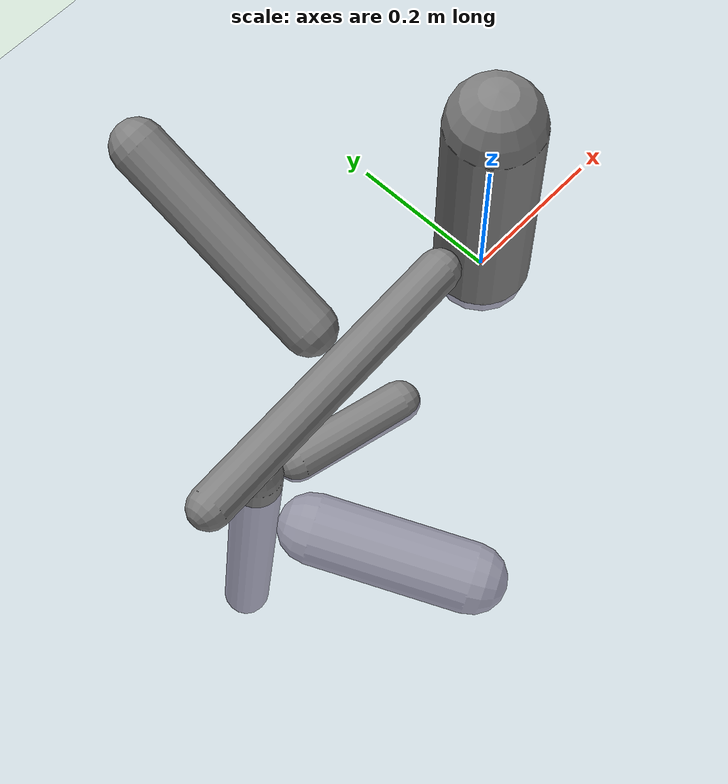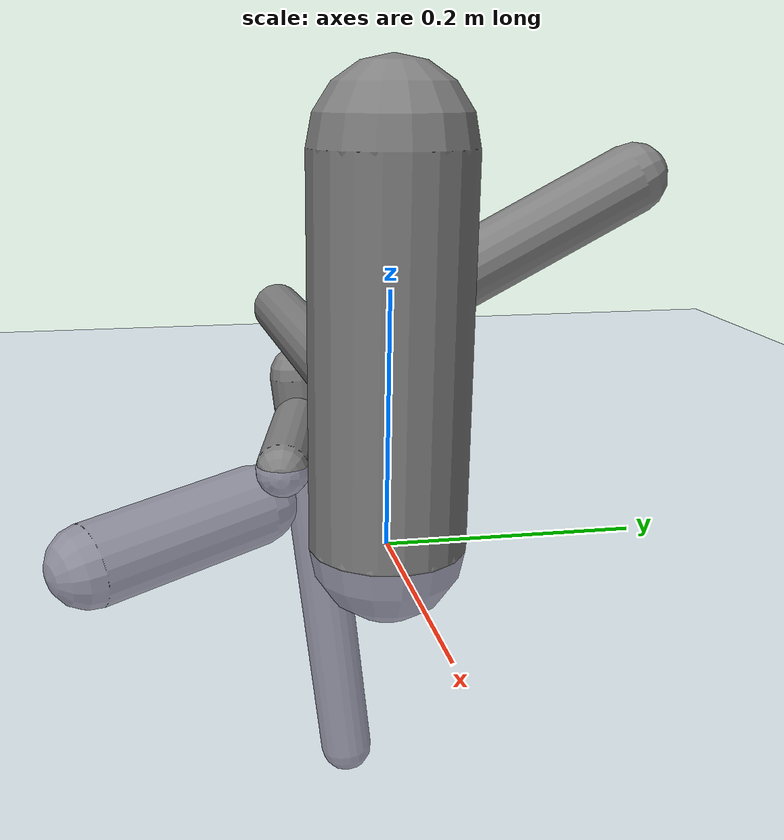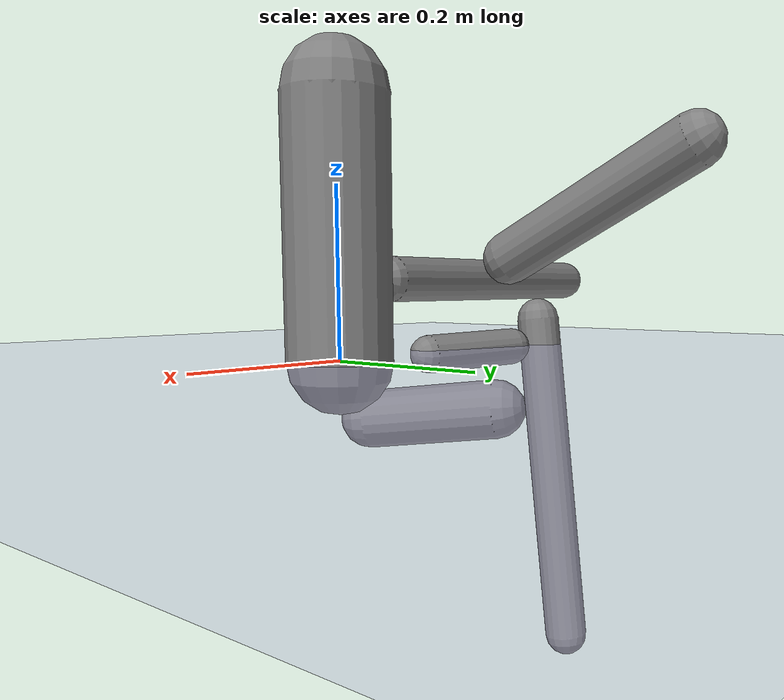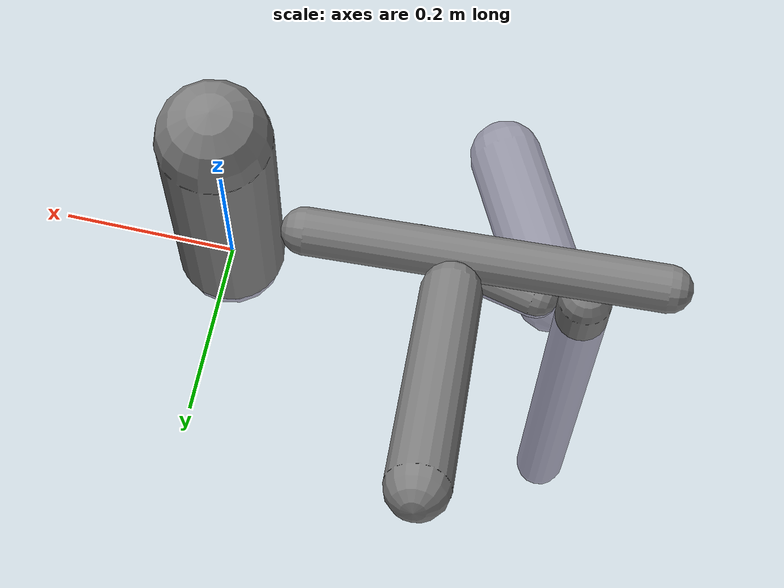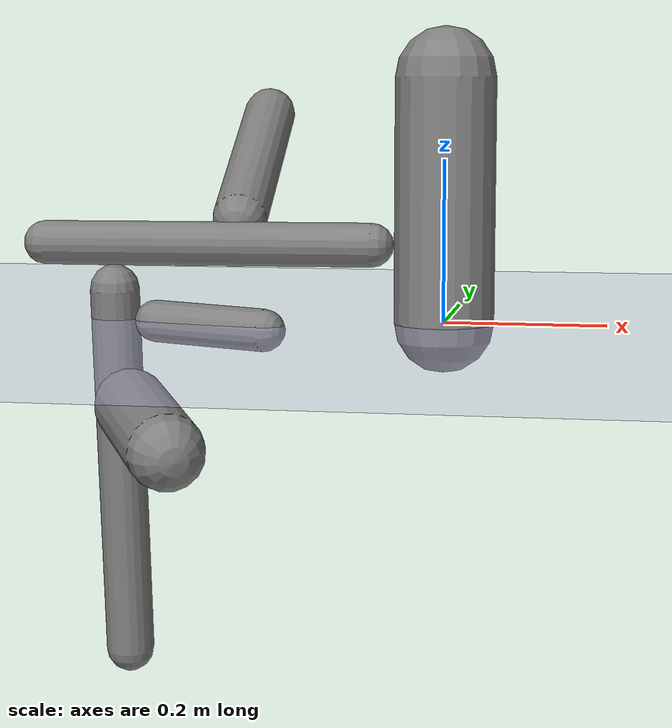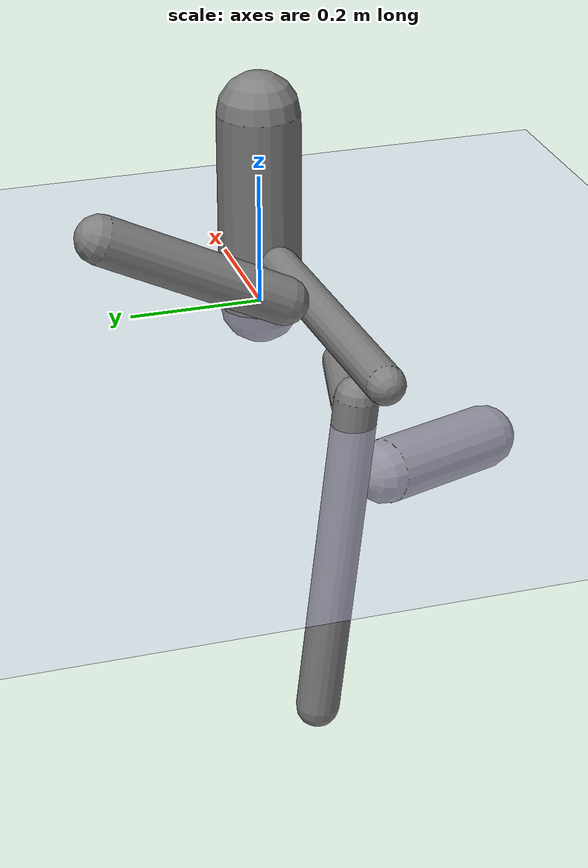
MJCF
<?xml version='1.0' encoding='UTF-8'?>
<mujoco model="robot_model">
  <worldbody>
    <light name="light" pos="0 -3 10" dir="0 0.5 -1" diffuse=".8 .8 .8" specular="0.1 0.1 0.1"/>
    <geom name="floor" type="plane" size="10.0 10.0 0.1" pos="0 0 0" rgba="0.8 0.8 1 1" contype="2" conaffinity="1"/>
    <body name="limb0" pos="0 0 0">
      <geom name="limb0_geom" type="capsule" fromto="0 0 0 0 0 0.2999514055686645" size="0.06216427588406342" density="772.972729203389" contype="1" conaffinity="2"/>
      <site type="sphere" size="0.01" name="limb0_site0" pos="-0.08983321048826172 -0.004555644083868842 0.09478613964549006" quat="0.7071067811865476 0.035812953632730245 -0.7061992865700869 0.0"/>
      <freejoint name="limb0_root"/>
      <body name="limb1" pos="-0.08983321048826172 -0.004555644083868842 0.09478613964549006" quat="0.7071067811865476 0.035812953632730245 -0.7061992865700869 0.0">
        <geom name="limb1_geom" type="capsule" fromto="0 0 0 0 0 0.4119779083954327" size="0.027784373909289378" density="1094.7449235337838" contype="1" conaffinity="2"/>
        <site type="sphere" size="0.01" name="limb1_site0" pos="-0.05878354128122367 0.003798868022563459 0.3264704085390998" quat="0.7071067811865476 -0.045601430650075464 -0.7056348273169815 0.0"/>
        <site type="sphere" size="0.01" name="limb1_site1" pos="0.025322490239336783 0.05743409492391822 0.1738593347652854" quat="0.7071067811865476 -0.6470114650255221 0.28526507694691194 0.0"/>
        <body name="limb2" pos="-0.05878354128122367 0.003798868022563459 0.3264704085390998" quat="0.7071067811865476 -0.045601430650075464 -0.7056348273169815 0.0">
          <geom name="limb2_geom" type="capsule" fromto="0 0 0 0 0 0.4889589051366479" size="0.03112178980737259" density="785.1601357299012" contype="1" conaffinity="2"/>
          <site type="sphere" size="0.01" name="limb2_site0" pos="-0.03573312300293949 -0.06837867658753931 0.13233594321504516" quat="0.7071067811865476 0.6266946826244069 -0.32749622100154663 0.0"/>
          <site type="sphere" size="0.01" name="limb2_site1" pos="-0.056191404401370305 -0.012275511703749298 0.0373755399778887" quat="0.7071067811865476 0.15091458538187963 -0.6908145828795272 0.0"/>
          <body name="limb3" pos="-0.03573312300293949 -0.06837867658753931 0.13233594321504516" quat="0.7071067811865476 0.6266946826244069 -0.32749622100154663 0.0">
            <geom name="limb3_geom" type="capsule" fromto="0 0 0 0 0 0.20587440072907823" size="0.04603065339053593" density="1089.820416514438" contype="1" conaffinity="2"/>
            <joint name="joint_limb2_limb3_0" type="hinge" axis="1 0 0" range="-76.8184141901732 76.8184141901732" damping="5.0"/>
          </body>
          <body name="limb4" pos="-0.056191404401370305 -0.012275511703749298 0.0373755399778887" quat="0.7071067811865476 0.15091458538187963 -0.6908145828795272 0.0">
            <geom name="limb4_geom" type="capsule" fromto="0 0 0 0 0 0.14919347938278688" size="0.026394834886599366" density="526.9905097920008" contype="1" conaffinity="2"/>
            <joint name="joint_limb2_limb4_0" type="hinge" axis="0 0 1" range="-36.57311519522722 36.57311519522722" damping="5.0"/>
          </body>
          <joint name="joint_limb1_limb2_0" type="hinge" axis="1 0 0" range="-60.6612845033848 60.6612845033848" damping="5.0"/>
        </body>
        <body name="limb5" pos="0.025322490239336783 0.05743409492391822 0.1738593347652854" quat="0.7071067811865476 -0.6470114650255221 0.28526507694691194 0.0">
          <geom name="limb5_geom" type="capsule" fromto="0 0 0 0 0 0.28928158855542757" size="0.03498427886939431" density="573.2226405414596" contype="1" conaffinity="2"/>
          <joint name="joint_limb1_limb5_0" type="hinge" axis="1 0 0" range="-48.18281063347258 48.18281063347258" damping="5.0"/>
        </body>
        <joint name="joint_limb0_limb1_0" type="hinge" axis="0 1 0" range="-79.43746025127588 79.43746025127588" damping="5.0"/>
      </body>
    </body>
  </worldbody>
  <actuator>
    <position name="position_actuator_joint_limb0_limb1_0" joint="joint_limb0_limb1_0" gear="1.5835672608966855" inheritrange="1" forcerange="-5.960783523172352 5.960783523172352" forcelimited="true" kp="100.0"/>
    <position name="position_actuator_joint_limb1_limb2_0" joint="joint_limb1_limb2_0" gear="0.9597608262960533" inheritrange="1" forcerange="-6.336588271115302 6.336588271115302" forcelimited="true" kp="100.0"/>
    <position name="position_actuator_joint_limb2_limb3_0" joint="joint_limb2_limb3_0" gear="1.4426881968183625" inheritrange="1" forcerange="-9.693587687008968 9.693587687008968" forcelimited="true" kp="100.0"/>
    <position name="position_actuator_joint_limb2_limb4_0" joint="joint_limb2_limb4_0" gear="1.7107518951402347" inheritrange="1" forcerange="-1.0633834804654576 1.0633834804654576" forcelimited="true" kp="100.0"/>
    <position name="position_actuator_joint_limb1_limb5_0" joint="joint_limb1_limb5_0" gear="1.8903065910928873" inheritrange="1" forcerange="-3.701982454396224 3.701982454396224" forcelimited="true" kp="100.0"/>
  </actuator>
  <contact>
    <pair geom1="limb0_geom" geom2="limb1_geom"/>
    <pair geom1="limb1_geom" geom2="limb2_geom"/>
    <pair geom1="limb2_geom" geom2="limb3_geom"/>
    <pair geom1="limb2_geom" geom2="limb4_geom"/>
    <pair geom1="limb1_geom" geom2="limb5_geom"/>
  </contact>
</mujoco>
